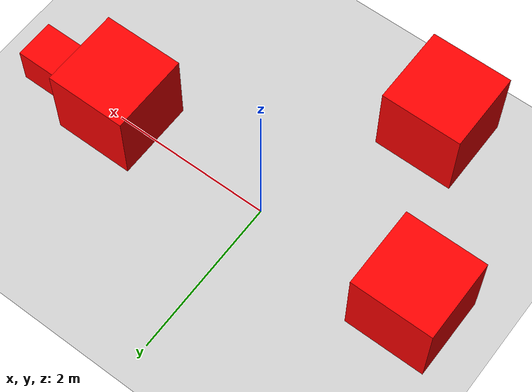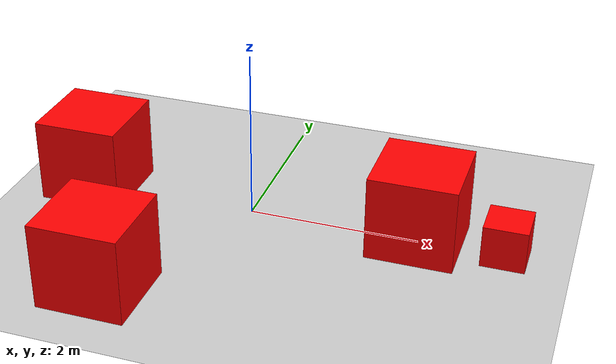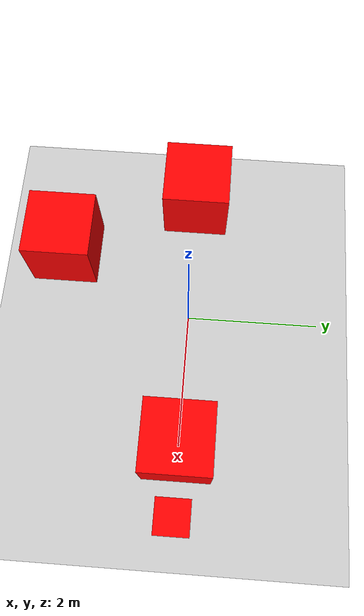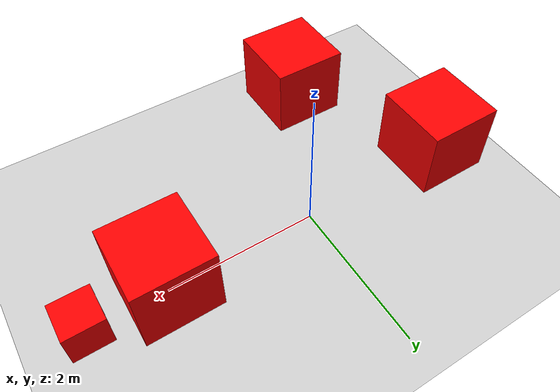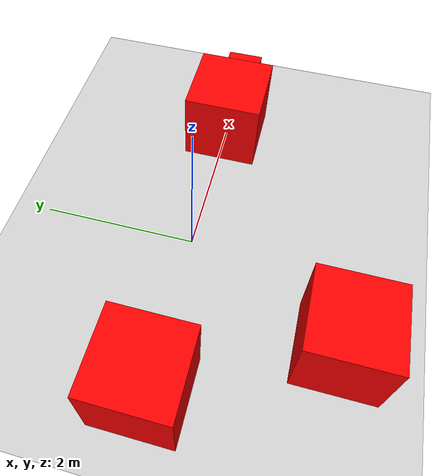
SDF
<?xml version="1.0" ?>
<sdf version="1.9">
  <world name="world_dyn_Obs">

    <plugin filename="gz-sim-physics-system"
            name="gz::sim::systems::Physics"/>
    <plugin filename="gz-sim-user-commands-system"
            name="gz::sim::systems::UserCommands"/>
    <plugin filename="gz-sim-scene-broadcaster-system"
            name="gz::sim::systems::SceneBroadcaster"/>

    <light type="directional" name="sun">
      <pose>0 0 10 0 0 0</pose>
      <diffuse>0.8 0.8 0.8 1</diffuse>
      <specular>0.2 0.2 0.2 1</specular>
      <direction>-0.5 0.1 -0.9</direction>
    </light>

    <model name="ground_plane">
      <static>true</static>
      <link name="link">
        <collision name="collision">
          <geometry>
            <plane>
              <normal>0 0 1</normal>
              <size>100 100</size>
            </plane>
          </geometry>
        </collision>
        <visual name="visual">
          <geometry>
            <plane>
              <normal>0 0 1</normal>
              <size>100 100</size>
            </plane>
          </geometry>
        </visual>
      </link>
    </model>

    <model name="dynamic_obstacle">
    <pose>3 0 0.25 0 0 0</pose>
    <static>false</static>

    <link name="link">
        <inertial>
        <mass>1.0</mass>
        </inertial>

        <collision name="collision">
        <geometry>
            <box>
            <size>0.5 0.5 0.5</size>
            </box>
        </geometry>
        </collision>

        <visual name="visual">
        <geometry>
            <box>
            <size>0.5 0.5 0.5</size>
            </box>
        </geometry>
        <material>
            <ambient>1 0 0 1</ambient>
            <diffuse>1 0 0 1</diffuse>
        </material>
        </visual>
    </link>
    </model>

        <!-- obstacle 1 -->
    <model name="box_obstacle_1">
    <static>true</static>

    <!-- x y z roll pitch yaw -->
    <pose>2 0 0.5 0 0 0</pose>

    <link name="link">

        <collision name="collision">
        <geometry>
            <box>
            <size>1 1 1</size>
            </box>
        </geometry>
        </collision>

        <visual name="visual">
        <geometry>
            <box>
            <size>1 1 1</size>
            </box>
        </geometry>

        <material>
            <ambient>1 0 0 1</ambient>
        </material>

        </visual>

    </link>
    </model>

            <!-- obstacle 2 -->
    <model name="box_obstacle_2">
    <static>true</static>

    <!-- x y z roll pitch yaw -->
    <pose>-1 -2 0.5 0 0 0</pose>

    <link name="link">

        <collision name="collision">
        <geometry>
            <box>
            <size>1 1 1</size>
            </box>
        </geometry>
        </collision>

        <visual name="visual">
        <geometry>
            <box>
            <size>1 1 1</size>
            </box>
        </geometry>

        <material>
            <ambient>1 0 0 1</ambient>
        </material>

        </visual>

    </link>
    </model>

            <!-- obstacle 3 -->
    <model name="box_obstacle_3">
    <static>true</static>

    <!-- x y z roll pitch yaw -->
    <pose>-2 0 0.5 0 0 0</pose>

    <link name="link">

        <collision name="collision">
        <geometry>
            <box>
            <size>1 1 1</size>
            </box>
        </geometry>
        </collision>

        <visual name="visual">
        <geometry>
            <box>
            <size>1 1 1</size>
            </box>
        </geometry>

        <material>
            <ambient>1 0 0 1</ambient>
        </material>

        </visual>

    </link>
    </model>

  </world>
</sdf>
